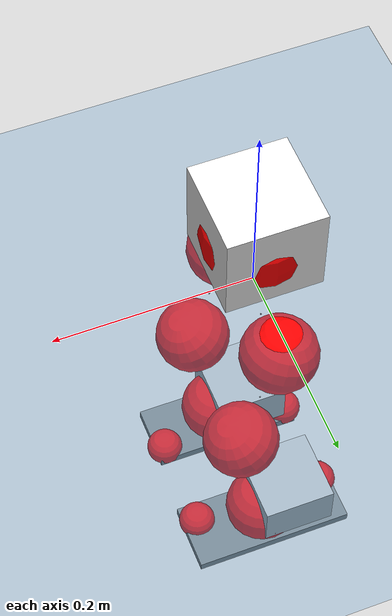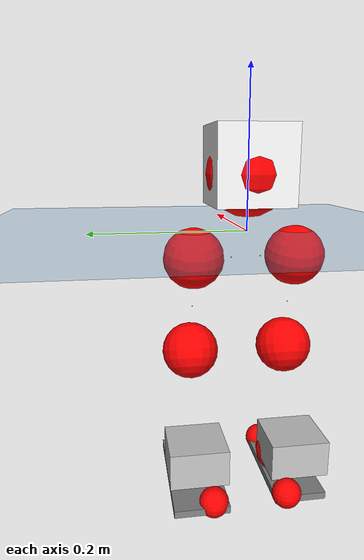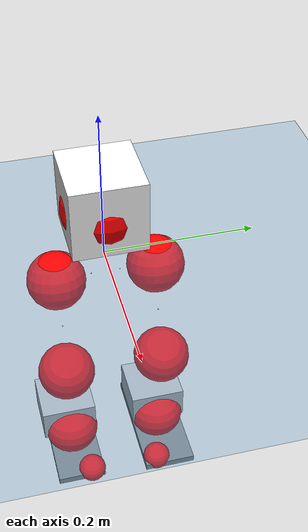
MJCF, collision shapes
<mujoco model="pi_12dof_release_v1">
  <compiler angle="radian" assetdir="assets" balanceinertia="true" inertiafromgeom="false"/>

  <option timestep="0.005" density="1.2" viscosity="2e-05"/>

  <size nkey="1"/>

  <visual>
    <quality shadowsize="8192"/>
    <map shadowclip="0.5"/>
  </visual>

  <default>
    <default class="/">
      <joint armature="0.01" damping="0.01" frictionloss="0.01"/>
      <geom contype="0" conaffinity="0" group="1" solref="-1000 -80"/>
      <site size="0.01 0.005 0.005" group="5"/>
      <general forcelimited="true" biastype="affine" gainprm="20" biasprm="0 -20 -0.5"/>
      <default class="foot">
        <geom size="0.0845 0.036 0.005" type="box" condim="6" group="4" priority="1" friction="0.9 0.2 0.2" solimp="0.015 1 0.005"/>
      </default>
      <default class="reward_collision_sphere">
        <geom group="5" rgba="1 0 0 1"/>
      </default>
    </default>
  </default>

  <asset>
    <texture type="skybox" colorspace="auto" name="//unnamed_texture_0" builtin="gradient" rgb1="0.95 0.95 0.95" rgb2="0.95 0.95 0.95" width="100" height="600"/>
    <texture type="2d" colorspace="auto" name="texplane" builtin="checker" rgb1="0.345 0.575 0.748" rgb2="0.345 0.575 0.748" markrgb="1 1 1" width="512" height="512"/>
    <material name="MatPlane" class="/" texture="texplane" texuniform="true" texrepeat="2 2" specular="0.9"/>
    <mesh name="baselink_1" class="/" file="baselink_1.STL"/>
    <mesh name="r_hip_pitch_link" class="/" file="r_hip_pitch_link.STL"/>
    <mesh name="r_hip_roll_link" class="/" file="r_hip_roll_link.STL"/>
    <mesh name="r_thigh_link" class="/" file="r_thigh_link.STL"/>
    <mesh name="r_calf_link" class="/" file="r_calf_link.STL"/>
    <mesh name="r_ankle_pitch_link" class="/" file="r_ankle_pitch_link.STL"/>
    <mesh name="r_ankle_roll_link" class="/" file="r_ankle_roll_link.STL"/>
    <mesh name="l_hip_pitch_link" class="/" file="l_hip_pitch_link.STL"/>
    <mesh name="l_hip_roll_link" class="/" file="l_hip_roll_link.STL"/>
    <mesh name="l_thigh_link" class="/" file="l_thigh_link.STL"/>
    <mesh name="l_calf_link" class="/" file="l_calf_link.STL"/>
    <mesh name="l_ankle_pitch_link" class="/" file="l_ankle_pitch_link.STL"/>
    <mesh name="l_ankle_roll_link" class="/" file="l_ankle_roll_link.STL"/>
  </asset>

  <worldbody>
    <geom name="floor" class="/" size="100 100 0.125" type="plane" group="0" material="MatPlane"/>
    <light name="toplight_shadow" class="/" pos="0 0 5" dir="0.0990148 0.0990148 -0.990148" type="directional" ambient="0.04 0.04 0.04" diffuse="0.55 0.55 0.55" specular="0.12 0.12 0.12"/>
    <light name="toplight_fill" class="/" pos="0 0 5" dir="0.0990148 0.0990148 -0.990148" type="directional" castshadow="false" ambient="0.04 0.04 0.04" diffuse="0.3 0.3 0.3" specular="0.08 0.08 0.08"/>
    <body name="trunk" pos="-0.000460229 6.20999e-05 8.54856e-05" quat="1 -2.37818e-05 -0.000196477 5.11173e-05">
      <inertial pos="0.00160976 -0.000782431 0.0409657" quat="0.69562 0.00877169 0.00723311 0.71832" mass="1.97405" diaginertia="0.0122209 0.00398912 0.00448378"/>
      <joint name="//unnamed_joint_0" type="free"/>
      <geom name="//unnamed_geom_1" class="/" type="mesh" density="0" rgba="1 1 1 1" mesh="baselink_1"/>
      <geom name="//unnamed_geom_2" class="/" size="0.048535 0.048535 0.048535" pos="0 0 0.0811805" type="box" rgba="1 1 1 1"/>
      <geom name="//unnamed_geom_3" class="reward_collision_sphere" size="0.0533885" pos="0 0 0.0710329"/>
      <site name="imu" class="/" pos="0.000255738 -0.000304731 -0.000165172" size="0.009707"/>
      <camera name="track" class="/" pos="0 -1.70136 0" quat="0.707107 0.707107 0 0" mode="trackcom"/>
      <camera name="ego_camera" class="/" pos="0.0784998 0 0.182656" quat="-0.5 -0.5 0.5 0.5"/>
      <body name="r_hip_pitch_link" pos="0.000761079 -0.0182284 -0.0325778" quat="0.992203 6.12653e-05 -0.124633 1.22005e-05">
        <inertial pos="0.00103454 -0.0469824 -1.69536e-05" quat="-0.0191151 0.706081 -0.0281932 0.707311" mass="0.332452" diaginertia="0.000135347 4.35945e-05 8.86566e-05"/>
        <joint name="r_hip_pitch_joint" class="/" pos="0 0 0" axis="2.97737e-05 -1 0.000355663" range="-1.75317 1.24343" armature="0.00988997" damping="0.0136772" frictionloss="0.0098467"/>
        <geom name="//unnamed_geom_4" class="/" type="mesh" density="0" rgba="0.75294 0.75294 0.75294 1" mesh="r_hip_pitch_link"/>
        <geom name="//unnamed_geom_5" class="/" size="0.00048535 0.00048535 0.00048535" type="box" rgba="0.75294 0.75294 0.75294 1"/>
        <body name="r_hip_roll_link" pos="0.00149831 -0.0465275 -0.000776273" quat="1 0.000109918 0.000126651 1.87721e-05">
          <inertial pos="-0.00146518 -0.000149983 -0.0625102" quat="0.703461 -0.0787445 -0.0827434 0.701495" mass="0.360468" diaginertia="0.00042155 0.000123558 0.000139244"/>
          <joint name="r_hip_roll_joint" class="/" pos="0 0 0" axis="-0.999993 0.00194786 -0.00322729" range="-0.120772 0.499" armature="0.0101422" damping="0.0022044" frictionloss="0.00980689"/>
          <geom name="//unnamed_geom_6" class="/" type="mesh" density="0" rgba="0.75294 0.75294 0.75294 1" mesh="r_hip_roll_link"/>
          <geom name="//unnamed_geom_7" class="/" size="0.00048535 0.00048535 0.00048535" type="box" rgba="0.75294 0.75294 0.75294 1"/>
          <geom name="//unnamed_geom_8" class="reward_collision_sphere" size="0.038828"/>
          <body name="r_thigh_link" pos="-0.000788608 0.000788435 -0.0694549" quat="1 1.4209e-05 7.33082e-05 0.000261702">
            <inertial pos="0.000564712 0.00146163 -0.0475253" quat="0.737527 0.675317 0.000966162 4.3129e-05" mass="0.102504" diaginertia="0.000157318 4.18638e-05 6.24199e-05"/>
            <joint name="r_thigh_joint" class="/" pos="0 0 0" axis="0.000441078 -0.00159426 -0.999999" range="-0.285427 0.582478" armature="0.00976424" damping="0.00906316" frictionloss="0.0094019"/>
            <geom name="//unnamed_geom_9" class="/" type="mesh" density="0" rgba="0.75294 0.75294 0.75294 1" mesh="r_thigh_link"/>
            <geom name="//unnamed_geom_10" class="/" size="0.00048535 0.00048535 0.00048535" type="box" rgba="0.75294 0.75294 0.75294 1"/>
            <body name="r_calf_link" pos="-0.000381854 -0.00214624 -0.0712416" quat="0.947644 -1.92146e-05 0.319327 8.22813e-05">
              <inertial pos="0.000544964 -0.00148356 -0.0699762" quat="0.999989 -0.00086985 0.000664036 0.00445373" mass="0.749639" diaginertia="0.00447435 0.00156415 0.000190267"/>
              <joint name="r_calf_joint" class="/" pos="0 0 0" axis="-0.00468454 -0.999989 -0.000913298" stiffness="0.000490733" range="-1.65197 0.642885" armature="0.0100101" damping="0.00615409" frictionloss="0.00955904"/>
              <geom name="//unnamed_geom_11" class="/" type="mesh" density="0" rgba="0.75294 0.75294 0.75294 1" mesh="r_calf_link"/>
              <geom name="//unnamed_geom_12" class="/" size="0.00048535 0.00048535 0.00048535" type="box" rgba="0.75294 0.75294 0.75294 1"/>
              <geom name="//unnamed_geom_13" class="reward_collision_sphere" size="0.038828"/>
              <body name="r_ankle_pitch_link" pos="-0.000328692 0.000360724 -0.14191" quat="0.980057 3.75979e-05 -0.198718 -0.000150713">
                <inertial pos="0.0049323 0.002665 0.000589614" quat="-0.00186924 0.707246 -0.00137147 0.706963" mass="0.158733" diaginertia="0.00038875 9.89474e-05 0.000128386"/>
                <joint name="r_ankle_pitch_joint" class="/" pos="0 0 0" axis="0.00467939 -0.999984 -0.00320921" range="-1.30407 0.483297" armature="0.00927607" damping="0.00867315" frictionloss="0.00982538"/>
                <geom name="//unnamed_geom_14" class="/" type="mesh" density="0" rgba="0.75294 0.75294 0.75294 1" mesh="r_ankle_pitch_link"/>
                <geom name="//unnamed_geom_15" class="/" size="0.0378573 0.038828 0.0242675" type="box" rgba="0.75294 0.75294 0.75294 1"/>
                <body name="r_ankle_roll_link" pos="0.0808091 0.00277247 0.000128789" quat="1 8.87935e-05 0.00031039 -0.000104279">
                  <inertial pos="-0.024373 0.000166667 -0.0146586" quat="0.560573 0.431658 0.43436 0.557459" mass="0.465443" diaginertia="0.00140499 0.000458026 0.000301599"/>
                  <joint name="r_ankle_roll_joint" class="/" pos="0 0 0" axis="-0.999995 0.000217772 0.00315747" range="-0.167408 0.155778" armature="0.00980741" damping="0.00724189" frictionloss="0.00992341"/>
                  <geom name="//unnamed_geom_16" class="/" type="mesh" density="0" rgba="0.75294 0.75294 0.75294 1" mesh="r_ankle_roll_link"/>
                  <geom name="//unnamed_geom_17" class="/" type="mesh" rgba="0.75294 0.75294 0.75294 1" mesh="r_ankle_roll_link"/>
                  <geom name="right_foot" class="foot" size="0.0796697 0.0339622 0.0047169" pos="-0.0533799 0 -0.0446493"/>
                  <geom name="//unnamed_geom_19" class="reward_collision_sphere" size="0.038828" pos="-0.0523332 0 -0.0202951"/>
                  <geom name="//unnamed_geom_20" class="reward_collision_sphere" size="0.019414" pos="0.0157 0.0170136 -0.0405902"/>
                  <geom name="//unnamed_geom_21" class="reward_collision_sphere" size="0.019414" pos="-0.1256 0.0170136 -0.0405902"/>
                  <site name="right_foot" class="foot" pos="-0.0533799 0 -0.0446493" size="0.009707"/>
                </body>
              </body>
            </body>
          </body>
        </body>
      </body>
      <body name="l_hip_pitch_link" pos="-0.000193139 0.0203195 -0.0330484" quat="0.992196 2.90484e-06 -0.124687 -2.70036e-05">
        <inertial pos="0.000979804 0.0449977 -0.00047886" quat="-0.0400397 0.70674 0.0271276 0.705818" mass="0.35735" diaginertia="0.000163323 4.66515e-05 0.000109622"/>
        <joint name="l_hip_pitch_joint" class="/" pos="0 0 0" axis="-0.000602654 1 -0.00037882" range="-1.23858 1.75018" armature="0.00968317" damping="0.00806727" frictionloss="0.0101351"/>
        <geom name="//unnamed_geom_22" class="/" type="mesh" density="0" rgba="0.75294 0.75294 0.75294 1" mesh="l_hip_pitch_link"/>
        <geom name="//unnamed_geom_23" class="/" size="0.00048535 0.00048535 0.00048535" type="box" rgba="0.75294 0.75294 0.75294 1"/>
        <body name="l_hip_roll_link" pos="0.000803322 0.0481069 -0.000557373" quat="1 1.59187e-05 -1.09442e-05 -5.53478e-05">
          <inertial pos="-0.00185363 7.69483e-06 -0.0625533" quat="0.699122 -0.0754826 -0.0778338 0.706733" mass="0.360133" diaginertia="0.00042009 0.000123644 0.000139693"/>
          <joint name="l_hip_roll_joint" class="/" pos="0 0 0" axis="-0.999998 -0.000819354 -0.0018448" range="-0.498528 0.105594" armature="0.00946147" damping="0.00123062" frictionloss="0.0100934"/>
          <geom name="//unnamed_geom_24" class="/" type="mesh" density="0" rgba="0.75294 0.75294 0.75294 1" mesh="l_hip_roll_link"/>
          <geom name="//unnamed_geom_25" class="/" size="0.00048535 0.00048535 0.00048535" type="box" rgba="0.75294 0.75294 0.75294 1"/>
          <geom name="//unnamed_geom_26" class="reward_collision_sphere" size="0.038828"/>
          <body name="l_thigh_link" pos="-6.71863e-05 -0.000574019 -0.0699711" quat="1 6.46112e-05 9.43048e-05 -0.000109713">
            <inertial pos="-0.000196861 -0.00190198 -0.0483012" quat="0.673104 0.739541 -0.00148538 0.00271903" mass="0.104159" diaginertia="0.0001603 4.24036e-05 6.31749e-05"/>
            <joint name="l_thigh_joint" class="/" pos="0 0 0" axis="-0.000367496 -1.59356e-05 -1" range="-0.605484 0.31594" armature="0.00978515" damping="0.00288662" frictionloss="0.00978906"/>
            <geom name="//unnamed_geom_27" class="/" type="mesh" density="0" rgba="0.75294 0.75294 0.75294 1" mesh="l_thigh_link"/>
            <geom name="//unnamed_geom_28" class="/" size="0.00048535 0.00048535 0.00048535" type="box" rgba="0.75294 0.75294 0.75294 1"/>
            <body name="l_calf_link" pos="0.000419632 0.000169088 -0.0718894" quat="0.947665 2.95561e-07 0.319267 -0.000114566">
              <inertial pos="0.0011987 0.00225543 -0.0716972" quat="0.999982 0.00571113 -0.00127457 0.00142071" mass="0.733382" diaginertia="0.00439394 0.00154976 0.000186197"/>
              <joint name="l_calf_joint" class="/" pos="0 0 0" axis="0.00309826 0.999991 0.00300769" stiffness="0.00269269" range="-0.647899 1.65281" armature="0.00971006" damping="0.00631641" frictionloss="0.00969438"/>
              <geom name="//unnamed_geom_29" class="/" type="mesh" density="0" rgba="0.75294 0.75294 0.75294 1" mesh="l_calf_link"/>
              <geom name="//unnamed_geom_30" class="/" size="0.00048535 0.00048535 0.00048535" type="box" rgba="0.75294 0.75294 0.75294 1"/>
              <geom name="//unnamed_geom_31" class="reward_collision_sphere" size="0.038828"/>
              <body name="l_ankle_pitch_link" pos="0.00117275 0.000459473 -0.141981" quat="0.980083 7.6288e-05 -0.198587 -0.000259265">
                <inertial pos="0.00522496 -0.00149266 0.000322409" quat="-0.00184111 0.707292 0.00221989 0.706916" mass="0.164247" diaginertia="0.000394394 0.000100259 0.000130324"/>
                <joint name="l_ankle_pitch_joint" class="/" pos="0 0 0" axis="0.00120751 0.999999 -0.000383313" range="-0.488316 1.32011" armature="0.0101053" damping="0.00555326" frictionloss="0.00957216"/>
                <geom name="//unnamed_geom_32" class="/" type="mesh" density="0" rgba="0.75294 0.75294 0.75294 1" mesh="l_ankle_pitch_link"/>
                <geom name="//unnamed_geom_33" class="/" size="0.0378573 0.038828 0.0242675" type="box" rgba="0.75294 0.75294 0.75294 1"/>
                <body name="l_ankle_roll_link" pos="0.0789775 8.89133e-05 -0.000279653" quat="1 -1.84882e-05 5.6256e-05 -6.06419e-05">
                  <inertial pos="-0.0263158 0.000402541 -0.0142956" quat="0.557565 0.430638 0.436991 0.559206" mass="0.473015" diaginertia="0.00142851 0.000459155 0.000307331"/>
                  <joint name="l_ankle_roll_joint" class="/" pos="0 0 0" axis="-1 -0.000154091 -7.49951e-05" range="-0.162585 0.16996" armature="0.00936921" damping="0.00856478" frictionloss="0.00949995"/>
                  <geom name="//unnamed_geom_34" class="/" type="mesh" density="0" rgba="0.75294 0.75294 0.75294 1" mesh="l_ankle_roll_link"/>
                  <geom name="//unnamed_geom_35" class="/" type="mesh" rgba="0.75294 0.75294 0.75294 1" mesh="l_ankle_roll_link"/>
                  <geom name="left_foot" class="foot" size="0.0850091 0.0361284 0.00477682" pos="-0.0533799 0 -0.0446493"/>
                  <geom name="//unnamed_geom_37" class="reward_collision_sphere" size="0.038828" pos="-0.0523332 0 -0.0202951"/>
                  <geom name="//unnamed_geom_38" class="reward_collision_sphere" size="0.019414" pos="0.0157 -0.0170136 -0.0405902"/>
                  <geom name="//unnamed_geom_39" class="reward_collision_sphere" size="0.019414" pos="-0.1256 -0.0170136 -0.0405902"/>
                  <site name="left_foot" class="foot" pos="-0.0533799 0 -0.0446493" size="0.009707"/>
                </body>
              </body>
            </body>
          </body>
        </body>
      </body>
    </body>
  </worldbody>

  <contact>
    <pair class="/" geom1="floor" geom2="right_foot" name="//unnamed_contact_1"/>
    <pair class="/" geom1="floor" geom2="left_foot" name="//unnamed_contact_0"/>
  </contact>

  <actuator>
    <general name="r_hip_pitch_joint" class="/" joint="r_hip_pitch_joint" forcerange="-19.9287 19.9287" gainprm="19.0724" biasprm="0 -19.0724 -0.478773"/>
    <general name="r_hip_roll_joint" class="/" joint="r_hip_roll_joint" forcerange="-20.4521 20.4521" gainprm="19.0724" biasprm="0 -19.0724 -0.478773"/>
    <general name="r_thigh_joint" class="/" joint="r_thigh_joint" forcerange="-20.1819 20.1819" gainprm="19.0724" biasprm="0 -19.0724 -0.478773"/>
    <general name="r_calf_joint" class="/" joint="r_calf_joint" forcerange="-20.3154 20.3154" gainprm="19.0724" biasprm="0 -19.0724 -0.478773"/>
    <general name="r_ankle_pitch_joint" class="/" joint="r_ankle_pitch_joint" forcerange="-20.5425 20.5425" gainprm="19.0724" biasprm="0 -19.0724 -0.478773"/>
    <general name="r_ankle_roll_joint" class="/" joint="r_ankle_roll_joint" forcerange="-20.4748 20.4748" gainprm="19.0724" biasprm="0 -19.0724 -0.478773"/>
    <general name="l_hip_pitch_joint" class="/" joint="l_hip_pitch_joint" forcerange="-20.9792 20.9792" gainprm="19.0724" biasprm="0 -19.0724 -0.478773"/>
    <general name="l_hip_roll_joint" class="/" joint="l_hip_roll_joint" forcerange="-20.2124 20.2124" gainprm="19.0724" biasprm="0 -19.0724 -0.478773"/>
    <general name="l_thigh_joint" class="/" joint="l_thigh_joint" forcerange="-20.2719 20.2719" gainprm="19.0724" biasprm="0 -19.0724 -0.478773"/>
    <general name="l_calf_joint" class="/" joint="l_calf_joint" forcerange="-20.5125 20.5125" gainprm="19.0724" biasprm="0 -19.0724 -0.478773"/>
    <general name="l_ankle_pitch_joint" class="/" joint="l_ankle_pitch_joint" forcerange="-19.7163 19.7163" gainprm="19.0724" biasprm="0 -19.0724 -0.478773"/>
    <general name="l_ankle_roll_joint" class="/" joint="l_ankle_roll_joint" forcerange="-20.0075 20.0075" gainprm="19.0724" biasprm="0 -19.0724 -0.478773"/>
  </actuator>

  <sensor>
    <gyro site="imu" name="imu_angular_velocity"/>
    <velocimeter site="imu" name="imu_linear_velocity"/>
    <framelinvel objtype="site" objname="left_foot" name="left_foot_global_linear_velocity"/>
    <framelinvel objtype="site" objname="right_foot" name="right_foot_global_linear_velocity"/>
  </sensor>

  <keyframe>
    <key name="home" qpos="0 0 0.291 1 0 0 0 0.4 0 0 -0.8 0.4 0 -0.4 0 0 0.8 -0.4 0"/>
  </keyframe>
</mujoco>
